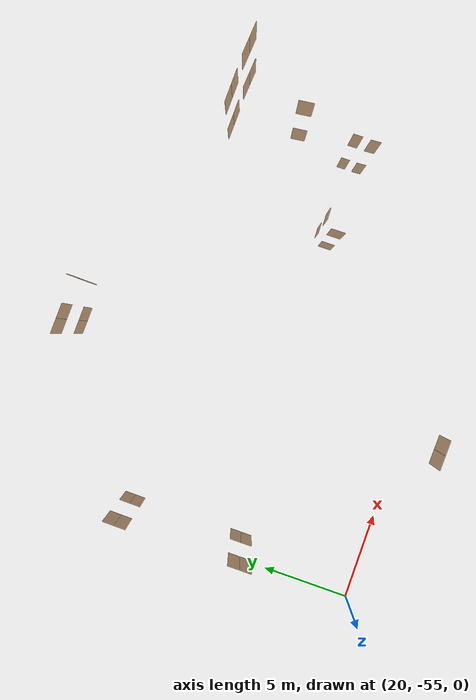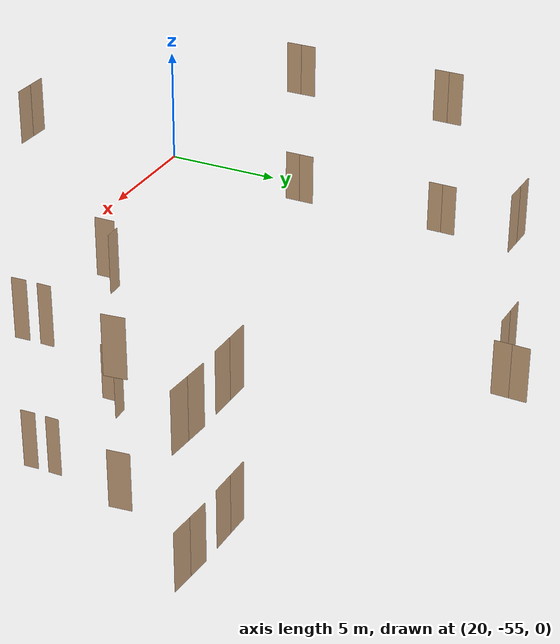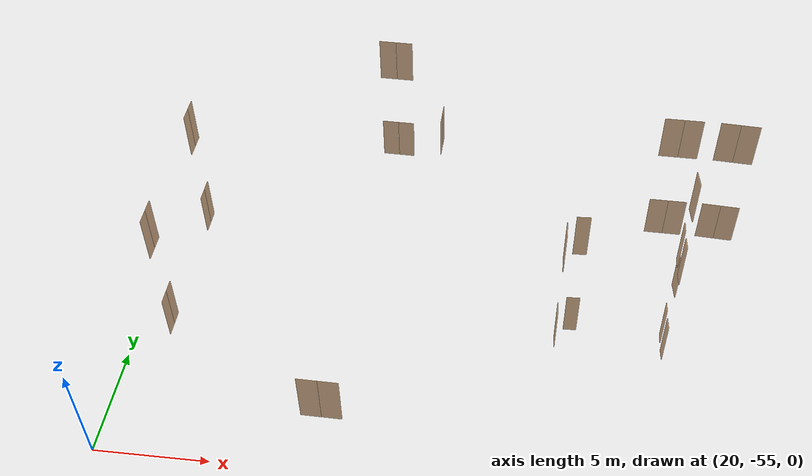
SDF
<sdf version="1.7">
 <world name="sim_world">
  <model name="null12">
   <pose>21.516139715442637 -47.992578104684455 0.0 0 0 1.5677624355625863</pose>
   <link name="right">
    <pose>0.31893911410792614 0 1.11 0 0 0</pose>
    <visual name="right_visual">
     <geometry><box><size>0.6278782282158523 0.03 2.2</size></box></geometry>
     <material>
      <ambient>0.5 0.25 0 0.6</ambient>
      <diffuse>0.5 0.25 0 0.6</diffuse>
      <pbr><metal><metalness>0.0</metalness></metal></pbr>
     </material>
    </visual>
    <collision name="right_collision">
     <geometry><box><size>0.6278782282158523 0.03 2.2</size></box></geometry>
     <surface><contact><collide_bitmask>0x02</collide_bitmask></contact></surface>
    </collision>
    <inertial>
     <mass>50.0</mass>
     <inertia><ixx>20.17041666666667</ixx><iyy>21.809296122781163</iyy><izz>1.6463794561144913</izz></inertia>
    </inertial>
   </link>
   <joint name="right_joint" type="revolute">
    <parent>world</parent>
    <child>right</child>
    <axis><xyz>0 0 -1</xyz><limit><lower>0</lower><upper>1.57</upper></limit></axis>
    <pose>0.31893911410792614 0 0 0 0 0</pose>
   </joint>
   <link name="left">
    <pose>-0.31893911410792614 0 1.11 0 0 0</pose>
    <visual name="left_visual">
     <geometry><box><size>0.6278782282158523 0.03 2.2</size></box></geometry>
     <material>
      <ambient>0.5 0.25 0 0.6</ambient>
      <diffuse>0.5 0.25 0 0.6</diffuse>
      <pbr><metal><metalness>0.0</metalness></metal></pbr>
     </material>
    </visual>
    <collision name="left_collision">
     <geometry><box><size>0.6278782282158523 0.03 2.2</size></box></geometry>
     <surface><contact><collide_bitmask>0x02</collide_bitmask></contact></surface>
    </collision>
    <inertial>
     <mass>50.0</mass>
     <inertia><ixx>20.17041666666667</ixx><iyy>21.809296122781163</iyy><izz>1.6463794561144913</izz></inertia>
    </inertial>
   </link>
   <joint name="left_joint" type="revolute">
    <parent>world</parent>
    <child>left</child>
    <axis><xyz>0 0 -1</xyz><limit><lower>-1.57</lower><upper>0</upper></limit></axis>
    <pose>-0.31893911410792614 0 0 0 0 0</pose>
   </joint>
   <plugin name="register_component" filename="libregister_component.so">
    <component name="Door">
     <v_max_door>0.5</v_max_door>
     <a_max_door>0.3</a_max_door>
     <a_nom_door>0.15</a_nom_door>
     <dx_min_door>0.01</dx_min_door>
     <f_max_door>500.0</f_max_door>
     <ros_interface>true</ros_interface>
     <door name="null12" type="DoubleSwingDoor" left_joint_name="left_joint" right_joint_name="right_joint"/>
    </component>
   </plugin>
  </model>
  <model name="null13">
   <pose>21.52582998996992 -41.437703387941625 0.0 0 0 1.5580600691412065</pose>
   <link name="right">
    <pose>0.3044549744162905 0 1.11 0 0 0</pose>
    <visual name="right_visual">
     <geometry><box><size>0.598909948832581 0.03 2.2</size></box></geometry>
     <material>
      <ambient>0.5 0.25 0 0.6</ambient>
      <diffuse>0.5 0.25 0 0.6</diffuse>
      <pbr><metal><metalness>0.0</metalness></metal></pbr>
     </material>
    </visual>
    <collision name="right_collision">
     <geometry><box><size>0.598909948832581 0.03 2.2</size></box></geometry>
     <surface><contact><collide_bitmask>0x02</collide_bitmask></contact></surface>
    </collision>
    <inertial>
     <mass>50.0</mass>
     <inertia><ixx>20.17041666666667</ixx><iyy>21.66122136171102</iyy><izz>1.4983046950443533</izz></inertia>
    </inertial>
   </link>
   <joint name="right_joint" type="revolute">
    <parent>world</parent>
    <child>right</child>
    <axis><xyz>0 0 -1</xyz><limit><lower>0</lower><upper>1.57</upper></limit></axis>
    <pose>0.3044549744162905 0 0 0 0 0</pose>
   </joint>
   <link name="left">
    <pose>-0.3044549744162905 0 1.11 0 0 0</pose>
    <visual name="left_visual">
     <geometry><box><size>0.598909948832581 0.03 2.2</size></box></geometry>
     <material>
      <ambient>0.5 0.25 0 0.6</ambient>
      <diffuse>0.5 0.25 0 0.6</diffuse>
      <pbr><metal><metalness>0.0</metalness></metal></pbr>
     </material>
    </visual>
    <collision name="left_collision">
     <geometry><box><size>0.598909948832581 0.03 2.2</size></box></geometry>
     <surface><contact><collide_bitmask>0x02</collide_bitmask></contact></surface>
    </collision>
    <inertial>
     <mass>50.0</mass>
     <inertia><ixx>20.17041666666667</ixx><iyy>21.66122136171102</iyy><izz>1.4983046950443533</izz></inertia>
    </inertial>
   </link>
   <joint name="left_joint" type="revolute">
    <parent>world</parent>
    <child>left</child>
    <axis><xyz>0 0 -1</xyz><limit><lower>-1.57</lower><upper>0</upper></limit></axis>
    <pose>-0.3044549744162905 0 0 0 0 0</pose>
   </joint>
   <plugin name="register_component" filename="libregister_component.so">
    <component name="Door">
     <v_max_door>0.5</v_max_door>
     <a_max_door>0.3</a_max_door>
     <a_nom_door>0.15</a_nom_door>
     <dx_min_door>0.01</dx_min_door>
     <f_max_door>500.0</f_max_door>
     <ros_interface>true</ros_interface>
     <door name="null13" type="DoubleSwingDoor" left_joint_name="left_joint" right_joint_name="right_joint"/>
    </component>
   </plugin>
  </model>
  <model name="null14">
   <pose>38.84317795980537 -47.05570665700809 0.0 0 0 -1.5538286634274892</pose>
   <link name="right">
    <pose>0 0 1.11 0 0 0</pose>
    <visual name="right_visual">
     <geometry><box><size>0.7454453095990315 0.03 2.2</size></box></geometry>
     <material>
      <ambient>0.5 0.25 0 0.6</ambient>
      <diffuse>0.5 0.25 0 0.6</diffuse>
      <pbr><metal><metalness>0.0</metalness></metal></pbr>
     </material>
    </visual>
    <collision name="right_collision">
     <geometry><box><size>0.7454453095990315 0.03 2.2</size></box></geometry>
     <surface><contact><collide_bitmask>0x02</collide_bitmask></contact></surface>
    </collision>
    <inertial>
     <mass>50.0</mass>
     <inertia><ixx>20.17041666666667</ixx><iyy>22.48203629001332</iyy><izz>2.31911962334665</izz></inertia>
    </inertial>
   </link>
   <joint name="right_joint" type="revolute">
    <parent>world</parent>
    <child>right</child>
    <axis><xyz>0 0 -1</xyz><limit><lower>0</lower><upper>1.57</upper></limit></axis>
    <pose>0.3777226547995158 0 0 0 0 0</pose>
   </joint>
   <plugin name="register_component" filename="libregister_component.so">
    <component name="Door">
     <v_max_door>0.5</v_max_door>
     <a_max_door>0.3</a_max_door>
     <a_nom_door>0.15</a_nom_door>
     <dx_min_door>0.01</dx_min_door>
     <f_max_door>500.0</f_max_door>
     <ros_interface>true</ros_interface>
     <door name="null14" type="SwingDoor" left_joint_name="empty_joint" right_joint_name="right_joint"/>
    </component>
   </plugin>
  </model>
  <model name="null15">
   <pose>39.50890402689552 -46.33237183773546 0.0 0 0 0.042532484541431645</pose>
   <link name="right">
    <pose>0 0 1.11 0 0 0</pose>
    <visual name="right_visual">
     <geometry><box><size>0.5922391749348342 0.03 2.2</size></box></geometry>
     <material>
      <ambient>0.5 0.25 0 0.6</ambient>
      <diffuse>0.5 0.25 0 0.6</diffuse>
      <pbr><metal><metalness>0.0</metalness></metal></pbr>
     </material>
    </visual>
    <collision name="right_collision">
     <geometry><box><size>0.5922391749348342 0.03 2.2</size></box></geometry>
     <surface><contact><collide_bitmask>0x02</collide_bitmask></contact></surface>
    </collision>
    <inertial>
     <mass>50.0</mass>
     <inertia><ixx>20.17041666666667</ixx><iyy>21.62811350136456</iyy><izz>1.4651968346978885</izz></inertia>
    </inertial>
   </link>
   <joint name="right_joint" type="revolute">
    <parent>world</parent>
    <child>right</child>
    <axis><xyz>0 0 -1</xyz><limit><lower>0</lower><upper>1.57</upper></limit></axis>
    <pose>0.3011195874674171 0 0 0 0 0</pose>
   </joint>
   <plugin name="register_component" filename="libregister_component.so">
    <component name="Door">
     <v_max_door>0.5</v_max_door>
     <a_max_door>0.3</a_max_door>
     <a_nom_door>0.15</a_nom_door>
     <dx_min_door>0.01</dx_min_door>
     <f_max_door>500.0</f_max_door>
     <ros_interface>true</ros_interface>
     <door name="null15" type="SwingDoor" left_joint_name="empty_joint" right_joint_name="right_joint"/>
    </component>
   </plugin>
  </model>
  <model name="null16">
   <pose>43.616374400980746 -47.33711727775923 0.0 0 0 1.6382697231197274</pose>
   <link name="right">
    <pose>0 0 1.11 0 0 0</pose>
    <visual name="right_visual">
     <geometry><box><size>0.5320376529630928 0.03 2.2</size></box></geometry>
     <material>
      <ambient>0.5 0.25 0 0.6</ambient>
      <diffuse>0.5 0.25 0 0.6</diffuse>
      <pbr><metal><metalness>0.0</metalness></metal></pbr>
     </material>
    </visual>
    <collision name="right_collision">
     <geometry><box><size>0.5320376529630928 0.03 2.2</size></box></geometry>
     <surface><contact><collide_bitmask>0x02</collide_bitmask></contact></surface>
    </collision>
    <inertial>
     <mass>50.0</mass>
     <inertia><ixx>20.17041666666667</ixx><iyy>21.34610026737699</iyy><izz>1.1831836007103183</izz></inertia>
    </inertial>
   </link>
   <joint name="right_joint" type="revolute">
    <parent>world</parent>
    <child>right</child>
    <axis><xyz>0 0 -1</xyz><limit><lower>0</lower><upper>1.57</upper></limit></axis>
    <pose>0.2710188264815464 0 0 0 0 0</pose>
   </joint>
   <plugin name="register_component" filename="libregister_component.so">
    <component name="Door">
     <v_max_door>0.5</v_max_door>
     <a_max_door>0.3</a_max_door>
     <a_nom_door>0.15</a_nom_door>
     <dx_min_door>0.01</dx_min_door>
     <f_max_door>500.0</f_max_door>
     <ros_interface>true</ros_interface>
     <door name="null16" type="SwingDoor" left_joint_name="empty_joint" right_joint_name="right_joint"/>
    </component>
   </plugin>
  </model>
  <model name="null17">
   <pose>43.59444156543708 -46.41264265017277 0.0 0 0 1.5853122435762714</pose>
   <link name="right">
    <pose>0 0 1.11 0 0 0</pose>
    <visual name="right_visual">
     <geometry><box><size>0.494312019098214 0.03 2.2</size></box></geometry>
     <material>
      <ambient>0.5 0.25 0 0.6</ambient>
      <diffuse>0.5 0.25 0 0.6</diffuse>
      <pbr><metal><metalness>0.0</metalness></metal></pbr>
     </material>
    </visual>
    <collision name="right_collision">
     <geometry><box><size>0.494312019098214 0.03 2.2</size></box></geometry>
     <surface><contact><collide_bitmask>0x02</collide_bitmask></contact></surface>
    </collision>
    <inertial>
     <mass>50.0</mass>
     <inertia><ixx>20.17041666666667</ixx><iyy>21.184768217603974</iyy><izz>1.0218515509373045</izz></inertia>
    </inertial>
   </link>
   <joint name="right_joint" type="revolute">
    <parent>world</parent>
    <child>right</child>
    <axis><xyz>0 0 -1</xyz><limit><lower>0</lower><upper>1.57</upper></limit></axis>
    <pose>0.252156009549107 0 0 0 0 0</pose>
   </joint>
   <plugin name="register_component" filename="libregister_component.so">
    <component name="Door">
     <v_max_door>0.5</v_max_door>
     <a_max_door>0.3</a_max_door>
     <a_nom_door>0.15</a_nom_door>
     <dx_min_door>0.01</dx_min_door>
     <f_max_door>500.0</f_max_door>
     <ros_interface>true</ros_interface>
     <door name="null17" type="SwingDoor" left_joint_name="empty_joint" right_joint_name="right_joint"/>
    </component>
   </plugin>
  </model>
  <model name="null18">
   <pose>44.30699227311567 -43.471132471488566 0.0 0 0 1.695151321341658</pose>
   <link name="right">
    <pose>0 0 1.11 0 0 0</pose>
    <visual name="right_visual">
     <geometry><box><size>0.8148966447741 0.03 2.2</size></box></geometry>
     <material>
      <ambient>0.5 0.25 0 0.6</ambient>
      <diffuse>0.5 0.25 0 0.6</diffuse>
      <pbr><metal><metalness>0.0</metalness></metal></pbr>
     </material>
    </visual>
    <collision name="right_collision">
     <geometry><box><size>0.8148966447741 0.03 2.2</size></box></geometry>
     <surface><contact><collide_bitmask>0x02</collide_bitmask></contact></surface>
    </collision>
    <inertial>
     <mass>50.0</mass>
     <inertia><ixx>20.17041666666667</ixx><iyy>22.93356892360036</iyy><izz>2.7706522569336904</izz></inertia>
    </inertial>
   </link>
   <joint name="right_joint" type="revolute">
    <parent>world</parent>
    <child>right</child>
    <axis><xyz>0 0 -1</xyz><limit><lower>0</lower><upper>1.57</upper></limit></axis>
    <pose>0.41244832238705 0 0 0 0 0</pose>
   </joint>
   <plugin name="register_component" filename="libregister_component.so">
    <component name="Door">
     <v_max_door>0.5</v_max_door>
     <a_max_door>0.3</a_max_door>
     <a_nom_door>0.15</a_nom_door>
     <dx_min_door>0.01</dx_min_door>
     <f_max_door>500.0</f_max_door>
     <ros_interface>true</ros_interface>
     <door name="null18" type="SwingDoor" left_joint_name="empty_joint" right_joint_name="right_joint"/>
    </component>
   </plugin>
  </model>
  <model name="null27">
   <pose>43.86870017459789 -39.68192661317288 0.0 0 0 -0.018853941428626845</pose>
   <link name="right">
    <pose>0.4392396249357061 0 1.11 0 0 0</pose>
    <visual name="right_visual">
     <geometry><box><size>0.8684792498714122 0.03 2.2</size></box></geometry>
     <material>
      <ambient>0.5 0.25 0 0.6</ambient>
      <diffuse>0.5 0.25 0 0.6</diffuse>
      <pbr><metal><metalness>0.0</metalness></metal></pbr>
     </material>
    </visual>
    <collision name="right_collision">
     <geometry><box><size>0.8684792498714122 0.03 2.2</size></box></geometry>
     <surface><contact><collide_bitmask>0x02</collide_bitmask></contact></surface>
    </collision>
    <inertial>
     <mass>50.0</mass>
     <inertia><ixx>20.17041666666667</ixx><iyy>23.309400864405053</iyy><izz>3.146484197738379</izz></inertia>
    </inertial>
   </link>
   <joint name="right_joint" type="revolute">
    <parent>world</parent>
    <child>right</child>
    <axis><xyz>0 0 -1</xyz><limit><lower>0</lower><upper>1.57</upper></limit></axis>
    <pose>0.4392396249357061 0 0 0 0 0</pose>
   </joint>
   <link name="left">
    <pose>-0.4392396249357061 0 1.11 0 0 0</pose>
    <visual name="left_visual">
     <geometry><box><size>0.8684792498714122 0.03 2.2</size></box></geometry>
     <material>
      <ambient>0.5 0.25 0 0.6</ambient>
      <diffuse>0.5 0.25 0 0.6</diffuse>
      <pbr><metal><metalness>0.0</metalness></metal></pbr>
     </material>
    </visual>
    <collision name="left_collision">
     <geometry><box><size>0.8684792498714122 0.03 2.2</size></box></geometry>
     <surface><contact><collide_bitmask>0x02</collide_bitmask></contact></surface>
    </collision>
    <inertial>
     <mass>50.0</mass>
     <inertia><ixx>20.17041666666667</ixx><iyy>23.309400864405053</iyy><izz>3.146484197738379</izz></inertia>
    </inertial>
   </link>
   <joint name="left_joint" type="revolute">
    <parent>world</parent>
    <child>left</child>
    <axis><xyz>0 0 -1</xyz><limit><lower>-1.57</lower><upper>0</upper></limit></axis>
    <pose>-0.4392396249357061 0 0 0 0 0</pose>
   </joint>
   <plugin name="register_component" filename="libregister_component.so">
    <component name="Door">
     <v_max_door>0.5</v_max_door>
     <a_max_door>0.3</a_max_door>
     <a_nom_door>0.15</a_nom_door>
     <dx_min_door>0.01</dx_min_door>
     <f_max_door>500.0</f_max_door>
     <ros_interface>true</ros_interface>
     <door name="null27" type="DoubleSwingDoor" left_joint_name="left_joint" right_joint_name="right_joint"/>
    </component>
   </plugin>
  </model>
  <model name="null28">
   <pose>46.3545150265612 -39.75981342174675 0.0 0 0 -0.06970741349653899</pose>
   <link name="right">
    <pose>0.4402306933766998 0 1.11 0 0 0</pose>
    <visual name="right_visual">
     <geometry><box><size>0.8704613867533996 0.03 2.2</size></box></geometry>
     <material>
      <ambient>0.5 0.25 0 0.6</ambient>
      <diffuse>0.5 0.25 0 0.6</diffuse>
      <pbr><metal><metalness>0.0</metalness></metal></pbr>
     </material>
    </visual>
    <collision name="right_collision">
     <geometry><box><size>0.8704613867533996 0.03 2.2</size></box></geometry>
     <surface><contact><collide_bitmask>0x02</collide_bitmask></contact></surface>
    </collision>
    <inertial>
     <mass>50.0</mass>
     <inertia><ixx>20.17041666666667</ixx><iyy>23.323762607619386</iyy><izz>3.1608459409527145</izz></inertia>
    </inertial>
   </link>
   <joint name="right_joint" type="revolute">
    <parent>world</parent>
    <child>right</child>
    <axis><xyz>0 0 -1</xyz><limit><lower>0</lower><upper>1.57</upper></limit></axis>
    <pose>0.4402306933766998 0 0 0 0 0</pose>
   </joint>
   <link name="left">
    <pose>-0.4402306933766998 0 1.11 0 0 0</pose>
    <visual name="left_visual">
     <geometry><box><size>0.8704613867533996 0.03 2.2</size></box></geometry>
     <material>
      <ambient>0.5 0.25 0 0.6</ambient>
      <diffuse>0.5 0.25 0 0.6</diffuse>
      <pbr><metal><metalness>0.0</metalness></metal></pbr>
     </material>
    </visual>
    <collision name="left_collision">
     <geometry><box><size>0.8704613867533996 0.03 2.2</size></box></geometry>
     <surface><contact><collide_bitmask>0x02</collide_bitmask></contact></surface>
    </collision>
    <inertial>
     <mass>50.0</mass>
     <inertia><ixx>20.17041666666667</ixx><iyy>23.323762607619386</iyy><izz>3.1608459409527145</izz></inertia>
    </inertial>
   </link>
   <joint name="left_joint" type="revolute">
    <parent>world</parent>
    <child>left</child>
    <axis><xyz>0 0 -1</xyz><limit><lower>-1.57</lower><upper>0</upper></limit></axis>
    <pose>-0.4402306933766998 0 0 0 0 0</pose>
   </joint>
   <plugin name="register_component" filename="libregister_component.so">
    <component name="Door">
     <v_max_door>0.5</v_max_door>
     <a_max_door>0.3</a_max_door>
     <a_nom_door>0.15</a_nom_door>
     <dx_min_door>0.01</dx_min_door>
     <f_max_door>500.0</f_max_door>
     <ros_interface>true</ros_interface>
     <door name="null28" type="DoubleSwingDoor" left_joint_name="left_joint" right_joint_name="right_joint"/>
    </component>
   </plugin>
  </model>
  <model name="null32">
   <pose>32.38725342694753 -34.51945038820166 0.0 0 0 1.5533459476673854</pose>
   <link name="right">
    <pose>0.3407540803626434 0 1.11 0 0 0</pose>
    <visual name="right_visual">
     <geometry><box><size>0.6715081607252867 0.03 2.2</size></box></geometry>
     <material>
      <ambient>0.5 0.25 0 0.6</ambient>
      <diffuse>0.5 0.25 0 0.6</diffuse>
      <pbr><metal><metalness>0.0</metalness></metal></pbr>
     </material>
    </visual>
    <collision name="right_collision">
     <geometry><box><size>0.6715081607252867 0.03 2.2</size></box></geometry>
     <surface><contact><collide_bitmask>0x02</collide_bitmask></contact></surface>
    </collision>
    <inertial>
     <mass>50.0</mass>
     <inertia><ixx>20.17041666666667</ixx><iyy>22.04551337466941</iyy><izz>1.88259670800274</izz></inertia>
    </inertial>
   </link>
   <joint name="right_joint" type="revolute">
    <parent>world</parent>
    <child>right</child>
    <axis><xyz>0 0 -1</xyz><limit><lower>0</lower><upper>1.57</upper></limit></axis>
    <pose>0.3407540803626434 0 0 0 0 0</pose>
   </joint>
   <link name="left">
    <pose>-0.3407540803626434 0 1.11 0 0 0</pose>
    <visual name="left_visual">
     <geometry><box><size>0.6715081607252867 0.03 2.2</size></box></geometry>
     <material>
      <ambient>0.5 0.25 0 0.6</ambient>
      <diffuse>0.5 0.25 0 0.6</diffuse>
      <pbr><metal><metalness>0.0</metalness></metal></pbr>
     </material>
    </visual>
    <collision name="left_collision">
     <geometry><box><size>0.6715081607252867 0.03 2.2</size></box></geometry>
     <surface><contact><collide_bitmask>0x02</collide_bitmask></contact></surface>
    </collision>
    <inertial>
     <mass>50.0</mass>
     <inertia><ixx>20.17041666666667</ixx><iyy>22.04551337466941</iyy><izz>1.88259670800274</izz></inertia>
    </inertial>
   </link>
   <joint name="left_joint" type="revolute">
    <parent>world</parent>
    <child>left</child>
    <axis><xyz>0 0 -1</xyz><limit><lower>-1.57</lower><upper>0</upper></limit></axis>
    <pose>-0.3407540803626434 0 0 0 0 0</pose>
   </joint>
   <plugin name="register_component" filename="libregister_component.so">
    <component name="Door">
     <v_max_door>0.5</v_max_door>
     <a_max_door>0.3</a_max_door>
     <a_nom_door>0.15</a_nom_door>
     <dx_min_door>0.01</dx_min_door>
     <f_max_door>500.0</f_max_door>
     <ros_interface>true</ros_interface>
     <door name="null32" type="DoubleSwingDoor" left_joint_name="left_joint" right_joint_name="right_joint"/>
    </component>
   </plugin>
  </model>
  <model name="null41x">
   <pose>30.193493071808035 -35.38526449719531 0.0 0 0 3.1171103130600852</pose>
   <link name="right">
    <pose>0.4021477073207804 0 1.11 0 0 0</pose>
    <visual name="right_visual">
     <geometry><box><size>0.7942954146415608 0.03 2.2</size></box></geometry>
     <material>
      <ambient>0.5 0.25 0 0.6</ambient>
      <diffuse>0.5 0.25 0 0.6</diffuse>
      <pbr><metal><metalness>0.0</metalness></metal></pbr>
     </material>
    </visual>
    <collision name="right_collision">
     <geometry><box><size>0.7942954146415608 0.03 2.2</size></box></geometry>
     <surface><contact><collide_bitmask>0x02</collide_bitmask></contact></surface>
    </collision>
    <inertial>
     <mass>50.0</mass>
     <inertia><ixx>20.17041666666667</ixx><iyy>22.795438357169207</iyy><izz>2.632521690502538</izz></inertia>
    </inertial>
   </link>
   <joint name="right_joint" type="revolute">
    <parent>world</parent>
    <child>right</child>
    <axis><xyz>0 0 -1</xyz><limit><lower>0</lower><upper>1.57</upper></limit></axis>
    <pose>0.4021477073207804 0 0 0 0 0</pose>
   </joint>
   <link name="left">
    <pose>-0.4021477073207804 0 1.11 0 0 0</pose>
    <visual name="left_visual">
     <geometry><box><size>0.7942954146415608 0.03 2.2</size></box></geometry>
     <material>
      <ambient>0.5 0.25 0 0.6</ambient>
      <diffuse>0.5 0.25 0 0.6</diffuse>
      <pbr><metal><metalness>0.0</metalness></metal></pbr>
     </material>
    </visual>
    <collision name="left_collision">
     <geometry><box><size>0.7942954146415608 0.03 2.2</size></box></geometry>
     <surface><contact><collide_bitmask>0x02</collide_bitmask></contact></surface>
    </collision>
    <inertial>
     <mass>50.0</mass>
     <inertia><ixx>20.17041666666667</ixx><iyy>22.795438357169207</iyy><izz>2.632521690502538</izz></inertia>
    </inertial>
   </link>
   <joint name="left_joint" type="revolute">
    <parent>world</parent>
    <child>left</child>
    <axis><xyz>0 0 -1</xyz><limit><lower>-1.57</lower><upper>0</upper></limit></axis>
    <pose>-0.4021477073207804 0 0 0 0 0</pose>
   </joint>
   <plugin name="register_component" filename="libregister_component.so">
    <component name="Door">
     <v_max_door>0.5</v_max_door>
     <a_max_door>0.3</a_max_door>
     <a_nom_door>0.15</a_nom_door>
     <dx_min_door>0.01</dx_min_door>
     <f_max_door>500.0</f_max_door>
     <ros_interface>true</ros_interface>
     <door name="null41x" type="DoubleSwingDoor" left_joint_name="left_joint" right_joint_name="right_joint"/>
    </component>
   </plugin>
  </model>
  <model name="anull12">
   <pose>21.518147028781954 -47.965576174601644 5.0 0 0 1.5677632973814248</pose>
   <link name="right">
    <pose>0.3189404884485488 0 1.11 0 0 0</pose>
    <visual name="right_visual">
     <geometry><box><size>0.6278809768970975 0.03 2.2</size></box></geometry>
     <material>
      <ambient>0.5 0.25 0 0.6</ambient>
      <diffuse>0.5 0.25 0 0.6</diffuse>
      <pbr><metal><metalness>0.0</metalness></metal></pbr>
     </material>
    </visual>
    <collision name="right_collision">
     <geometry><box><size>0.6278809768970975 0.03 2.2</size></box></geometry>
     <surface><contact><collide_bitmask>0x02</collide_bitmask></contact></surface>
    </collision>
    <inertial>
     <mass>50.0</mass>
     <inertia><ixx>20.17041666666667</ixx><iyy>21.80931050478856</iyy><izz>1.6463938381218899</izz></inertia>
    </inertial>
   </link>
   <joint name="right_joint" type="revolute">
    <parent>world</parent>
    <child>right</child>
    <axis><xyz>0 0 -1</xyz><limit><lower>0</lower><upper>1.57</upper></limit></axis>
    <pose>0.3189404884485488 0 0 0 0 0</pose>
   </joint>
   <link name="left">
    <pose>-0.3189404884485488 0 1.11 0 0 0</pose>
    <visual name="left_visual">
     <geometry><box><size>0.6278809768970975 0.03 2.2</size></box></geometry>
     <material>
      <ambient>0.5 0.25 0 0.6</ambient>
      <diffuse>0.5 0.25 0 0.6</diffuse>
      <pbr><metal><metalness>0.0</metalness></metal></pbr>
     </material>
    </visual>
    <collision name="left_collision">
     <geometry><box><size>0.6278809768970975 0.03 2.2</size></box></geometry>
     <surface><contact><collide_bitmask>0x02</collide_bitmask></contact></surface>
    </collision>
    <inertial>
     <mass>50.0</mass>
     <inertia><ixx>20.17041666666667</ixx><iyy>21.80931050478856</iyy><izz>1.6463938381218899</izz></inertia>
    </inertial>
   </link>
   <joint name="left_joint" type="revolute">
    <parent>world</parent>
    <child>left</child>
    <axis><xyz>0 0 -1</xyz><limit><lower>-1.57</lower><upper>0</upper></limit></axis>
    <pose>-0.3189404884485488 0 0 0 0 0</pose>
   </joint>
   <plugin name="register_component" filename="libregister_component.so">
    <component name="Door">
     <v_max_door>0.5</v_max_door>
     <a_max_door>0.3</a_max_door>
     <a_nom_door>0.15</a_nom_door>
     <dx_min_door>0.01</dx_min_door>
     <f_max_door>500.0</f_max_door>
     <ros_interface>true</ros_interface>
     <door name="anull12" type="DoubleSwingDoor" left_joint_name="left_joint" right_joint_name="right_joint"/>
    </component>
   </plugin>
  </model>
  <model name="anull13">
   <pose>21.527831695926736 -41.41067320389757 5.0 0 0 1.558060930960046</pose>
   <link name="right">
    <pose>0.3044562863433009 0 1.11 0 0 0</pose>
    <visual name="right_visual">
     <geometry><box><size>0.5989125726866018 0.03 2.2</size></box></geometry>
     <material>
      <ambient>0.5 0.25 0 0.6</ambient>
      <diffuse>0.5 0.25 0 0.6</diffuse>
      <pbr><metal><metalness>0.0</metalness></metal></pbr>
     </material>
    </visual>
    <collision name="right_collision">
     <geometry><box><size>0.5989125726866018 0.03 2.2</size></box></geometry>
     <surface><contact><collide_bitmask>0x02</collide_bitmask></contact></surface>
    </collision>
    <inertial>
     <mass>50.0</mass>
     <inertia><ixx>20.17041666666667</ixx><iyy>21.661234457175354</iyy><izz>1.4983177905086837</izz></inertia>
    </inertial>
   </link>
   <joint name="right_joint" type="revolute">
    <parent>world</parent>
    <child>right</child>
    <axis><xyz>0 0 -1</xyz><limit><lower>0</lower><upper>1.57</upper></limit></axis>
    <pose>0.3044562863433009 0 0 0 0 0</pose>
   </joint>
   <link name="left">
    <pose>-0.3044562863433009 0 1.11 0 0 0</pose>
    <visual name="left_visual">
     <geometry><box><size>0.5989125726866018 0.03 2.2</size></box></geometry>
     <material>
      <ambient>0.5 0.25 0 0.6</ambient>
      <diffuse>0.5 0.25 0 0.6</diffuse>
      <pbr><metal><metalness>0.0</metalness></metal></pbr>
     </material>
    </visual>
    <collision name="left_collision">
     <geometry><box><size>0.5989125726866018 0.03 2.2</size></box></geometry>
     <surface><contact><collide_bitmask>0x02</collide_bitmask></contact></surface>
    </collision>
    <inertial>
     <mass>50.0</mass>
     <inertia><ixx>20.17041666666667</ixx><iyy>21.661234457175354</iyy><izz>1.4983177905086837</izz></inertia>
    </inertial>
   </link>
   <joint name="left_joint" type="revolute">
    <parent>world</parent>
    <child>left</child>
    <axis><xyz>0 0 -1</xyz><limit><lower>-1.57</lower><upper>0</upper></limit></axis>
    <pose>-0.3044562863433009 0 0 0 0 0</pose>
   </joint>
   <plugin name="register_component" filename="libregister_component.so">
    <component name="Door">
     <v_max_door>0.5</v_max_door>
     <a_max_door>0.3</a_max_door>
     <a_nom_door>0.15</a_nom_door>
     <dx_min_door>0.01</dx_min_door>
     <f_max_door>500.0</f_max_door>
     <ros_interface>true</ros_interface>
     <door name="anull13" type="DoubleSwingDoor" left_joint_name="left_joint" right_joint_name="right_joint"/>
    </component>
   </plugin>
  </model>
  <model name="anull14">
   <pose>38.845259129666395 -47.028685757020284 5.0 0 0 -1.5538278016086442</pose>
   <link name="right">
    <pose>0 0 1.11 0 0 0</pose>
    <visual name="right_visual">
     <geometry><box><size>0.7454485648886091 0.03 2.2</size></box></geometry>
     <material>
      <ambient>0.5 0.25 0 0.6</ambient>
      <diffuse>0.5 0.25 0 0.6</diffuse>
      <pbr><metal><metalness>0.0</metalness></metal></pbr>
     </material>
    </visual>
    <collision name="right_collision">
     <geometry><box><size>0.7454485648886091 0.03 2.2</size></box></geometry>
     <surface><contact><collide_bitmask>0x02</collide_bitmask></contact></surface>
    </collision>
    <inertial>
     <mass>50.0</mass>
     <inertia><ixx>20.17041666666667</ixx><iyy>22.482056512060367</iyy><izz>2.3191398453936958</izz></inertia>
    </inertial>
   </link>
   <joint name="right_joint" type="revolute">
    <parent>world</parent>
    <child>right</child>
    <axis><xyz>0 0 -1</xyz><limit><lower>0</lower><upper>1.57</upper></limit></axis>
    <pose>0.37772428244430456 0 0 0 0 0</pose>
   </joint>
   <plugin name="register_component" filename="libregister_component.so">
    <component name="Door">
     <v_max_door>0.5</v_max_door>
     <a_max_door>0.3</a_max_door>
     <a_nom_door>0.15</a_nom_door>
     <dx_min_door>0.01</dx_min_door>
     <f_max_door>500.0</f_max_door>
     <ros_interface>true</ros_interface>
     <door name="anull14" type="SwingDoor" left_joint_name="empty_joint" right_joint_name="right_joint"/>
    </component>
   </plugin>
  </model>
  <model name="anull15">
   <pose>39.51098744205042 -46.30534724708791 5.0 0 0 0.042533346360271035</pose>
   <link name="right">
    <pose>0 0 1.11 0 0 0</pose>
    <visual name="right_visual">
     <geometry><box><size>0.5922417700438324 0.03 2.2</size></box></geometry>
     <material>
      <ambient>0.5 0.25 0 0.6</ambient>
      <diffuse>0.5 0.25 0 0.6</diffuse>
      <pbr><metal><metalness>0.0</metalness></metal></pbr>
     </material>
    </visual>
    <collision name="right_collision">
     <geometry><box><size>0.5922417700438324 0.03 2.2</size></box></geometry>
     <surface><contact><collide_bitmask>0x02</collide_bitmask></contact></surface>
    </collision>
    <inertial>
     <mass>50.0</mass>
     <inertia><ixx>20.17041666666667</ixx><iyy>21.62812630910272</iyy><izz>1.4652096424360486</izz></inertia>
    </inertial>
   </link>
   <joint name="right_joint" type="revolute">
    <parent>world</parent>
    <child>right</child>
    <axis><xyz>0 0 -1</xyz><limit><lower>0</lower><upper>1.57</upper></limit></axis>
    <pose>0.3011208850219162 0 0 0 0 0</pose>
   </joint>
   <plugin name="register_component" filename="libregister_component.so">
    <component name="Door">
     <v_max_door>0.5</v_max_door>
     <a_max_door>0.3</a_max_door>
     <a_nom_door>0.15</a_nom_door>
     <dx_min_door>0.01</dx_min_door>
     <f_max_door>500.0</f_max_door>
     <ros_interface>true</ros_interface>
     <door name="anull15" type="SwingDoor" left_joint_name="empty_joint" right_joint_name="right_joint"/>
    </component>
   </plugin>
  </model>
  <model name="anull16">
   <pose>43.618476381548085 -47.31009347674954 5.0 0 0 1.6382705849385608</pose>
   <link name="right">
    <pose>0 0 1.11 0 0 0</pose>
    <visual name="right_visual">
     <geometry><box><size>0.5320399886576948 0.03 2.2</size></box></geometry>
     <material>
      <ambient>0.5 0.25 0 0.6</ambient>
      <diffuse>0.5 0.25 0 0.6</diffuse>
      <pbr><metal><metalness>0.0</metalness></metal></pbr>
     </material>
    </visual>
    <collision name="right_collision">
     <geometry><box><size>0.5320399886576948 0.03 2.2</size></box></geometry>
     <surface><contact><collide_bitmask>0x02</collide_bitmask></contact></surface>
    </collision>
    <inertial>
     <mass>50.0</mass>
     <inertia><ixx>20.17041666666667</ixx><iyy>21.346110623045337</iyy><izz>1.1831939563786666</izz></inertia>
    </inertial>
   </link>
   <joint name="right_joint" type="revolute">
    <parent>world</parent>
    <child>right</child>
    <axis><xyz>0 0 -1</xyz><limit><lower>0</lower><upper>1.57</upper></limit></axis>
    <pose>0.2710199943288474 0 0 0 0 0</pose>
   </joint>
   <plugin name="register_component" filename="libregister_component.so">
    <component name="Door">
     <v_max_door>0.5</v_max_door>
     <a_max_door>0.3</a_max_door>
     <a_nom_door>0.15</a_nom_door>
     <dx_min_door>0.01</dx_min_door>
     <f_max_door>500.0</f_max_door>
     <ros_interface>true</ros_interface>
     <door name="anull16" type="SwingDoor" left_joint_name="empty_joint" right_joint_name="right_joint"/>
    </component>
   </plugin>
  </model>
  <model name="anull17">
   <pose>43.596542654760555 -46.38561488441178 5.0 0 0 1.5853131053951008</pose>
   <link name="right">
    <pose>0 0 1.11 0 0 0</pose>
    <visual name="right_visual">
     <geometry><box><size>0.494314192229257 0.03 2.2</size></box></geometry>
     <material>
      <ambient>0.5 0.25 0 0.6</ambient>
      <diffuse>0.5 0.25 0 0.6</diffuse>
      <pbr><metal><metalness>0.0</metalness></metal></pbr>
     </material>
    </visual>
    <collision name="right_collision">
     <geometry><box><size>0.494314192229257 0.03 2.2</size></box></geometry>
     <surface><contact><collide_bitmask>0x02</collide_bitmask></contact></surface>
    </collision>
    <inertial>
     <mass>50.0</mass>
     <inertia><ixx>20.17041666666667</ixx><iyy>21.184777169330264</iyy><izz>1.0218605026635952</izz></inertia>
    </inertial>
   </link>
   <joint name="right_joint" type="revolute">
    <parent>world</parent>
    <child>right</child>
    <axis><xyz>0 0 -1</xyz><limit><lower>0</lower><upper>1.57</upper></limit></axis>
    <pose>0.2521570961146285 0 0 0 0 0</pose>
   </joint>
   <plugin name="register_component" filename="libregister_component.so">
    <component name="Door">
     <v_max_door>0.5</v_max_door>
     <a_max_door>0.3</a_max_door>
     <a_nom_door>0.15</a_nom_door>
     <dx_min_door>0.01</dx_min_door>
     <f_max_door>500.0</f_max_door>
     <ros_interface>true</ros_interface>
     <door name="anull17" type="SwingDoor" left_joint_name="empty_joint" right_joint_name="right_joint"/>
    </component>
   </plugin>
  </model>
  <model name="anull18">
   <pose>44.3090938978315 -43.44409141637411 5.0 0 0 1.6951521831604972</pose>
   <link name="right">
    <pose>0 0 1.11 0 0 0</pose>
    <visual name="right_visual">
     <geometry><box><size>0.8149001993364346 0.03 2.2</size></box></geometry>
     <material>
      <ambient>0.5 0.25 0 0.6</ambient>
      <diffuse>0.5 0.25 0 0.6</diffuse>
      <pbr><metal><metalness>0.0</metalness></metal></pbr>
     </material>
    </visual>
    <collision name="right_collision">
     <geometry><box><size>0.8149001993364346 0.03 2.2</size></box></geometry>
     <surface><contact><collide_bitmask>0x02</collide_bitmask></contact></surface>
    </collision>
    <inertial>
     <mass>50.0</mass>
     <inertia><ixx>20.17041666666667</ixx><iyy>22.933593061994006</iyy><izz>2.7706763953273374</izz></inertia>
    </inertial>
   </link>
   <joint name="right_joint" type="revolute">
    <parent>world</parent>
    <child>right</child>
    <axis><xyz>0 0 -1</xyz><limit><lower>0</lower><upper>1.57</upper></limit></axis>
    <pose>0.41245009966821733 0 0 0 0 0</pose>
   </joint>
   <plugin name="register_component" filename="libregister_component.so">
    <component name="Door">
     <v_max_door>0.5</v_max_door>
     <a_max_door>0.3</a_max_door>
     <a_nom_door>0.15</a_nom_door>
     <dx_min_door>0.01</dx_min_door>
     <f_max_door>500.0</f_max_door>
     <ros_interface>true</ros_interface>
     <door name="anull18" type="SwingDoor" left_joint_name="empty_joint" right_joint_name="right_joint"/>
    </component>
   </plugin>
  </model>
  <model name="anull27">
   <pose>43.87079664504623 -39.65486960772188 5.0 0 0 -0.01885307960978803</pose>
   <link name="right">
    <pose>0.43924151766328917 0 1.11 0 0 0</pose>
    <visual name="right_visual">
     <geometry><box><size>0.8684830353265783 0.03 2.2</size></box></geometry>
     <material>
      <ambient>0.5 0.25 0 0.6</ambient>
      <diffuse>0.5 0.25 0 0.6</diffuse>
      <pbr><metal><metalness>0.0</metalness></metal></pbr>
     </material>
    </visual>
    <collision name="right_collision">
     <geometry><box><size>0.8684830353265783 0.03 2.2</size></box></geometry>
     <surface><contact><collide_bitmask>0x02</collide_bitmask></contact></surface>
    </collision>
    <inertial>
     <mass>50.0</mass>
     <inertia><ixx>20.17041666666667</ixx><iyy>23.30942826104195</iyy><izz>3.146511594375278</izz></inertia>
    </inertial>
   </link>
   <joint name="right_joint" type="revolute">
    <parent>world</parent>
    <child>right</child>
    <axis><xyz>0 0 -1</xyz><limit><lower>0</lower><upper>1.57</upper></limit></axis>
    <pose>0.43924151766328917 0 0 0 0 0</pose>
   </joint>
   <link name="left">
    <pose>-0.43924151766328917 0 1.11 0 0 0</pose>
    <visual name="left_visual">
     <geometry><box><size>0.8684830353265783 0.03 2.2</size></box></geometry>
     <material>
      <ambient>0.5 0.25 0 0.6</ambient>
      <diffuse>0.5 0.25 0 0.6</diffuse>
      <pbr><metal><metalness>0.0</metalness></metal></pbr>
     </material>
    </visual>
    <collision name="left_collision">
     <geometry><box><size>0.8684830353265783 0.03 2.2</size></box></geometry>
     <surface><contact><collide_bitmask>0x02</collide_bitmask></contact></surface>
    </collision>
    <inertial>
     <mass>50.0</mass>
     <inertia><ixx>20.17041666666667</ixx><iyy>23.30942826104195</iyy><izz>3.146511594375278</izz></inertia>
    </inertial>
   </link>
   <joint name="left_joint" type="revolute">
    <parent>world</parent>
    <child>left</child>
    <axis><xyz>0 0 -1</xyz><limit><lower>-1.57</lower><upper>0</upper></limit></axis>
    <pose>-0.43924151766328917 0 0 0 0 0</pose>
   </joint>
   <plugin name="register_component" filename="libregister_component.so">
    <component name="Door">
     <v_max_door>0.5</v_max_door>
     <a_max_door>0.3</a_max_door>
     <a_nom_door>0.15</a_nom_door>
     <dx_min_door>0.01</dx_min_door>
     <f_max_door>500.0</f_max_door>
     <ros_interface>true</ros_interface>
     <door name="anull27" type="DoubleSwingDoor" left_joint_name="left_joint" right_joint_name="right_joint"/>
    </component>
   </plugin>
  </model>
  <model name="anull28">
   <pose>46.35662227575865 -39.73275460958648 5.0 0 0 -0.06970655167769661</pose>
   <link name="right">
    <pose>0.4402325903748974 0 1.11 0 0 0</pose>
    <visual name="right_visual">
     <geometry><box><size>0.8704651807497948 0.03 2.2</size></box></geometry>
     <material>
      <ambient>0.5 0.25 0 0.6</ambient>
      <diffuse>0.5 0.25 0 0.6</diffuse>
      <pbr><metal><metalness>0.0</metalness></metal></pbr>
     </material>
    </visual>
    <collision name="right_collision">
     <geometry><box><size>0.8704651807497948 0.03 2.2</size></box></geometry>
     <surface><contact><collide_bitmask>0x02</collide_bitmask></contact></surface>
    </collision>
    <inertial>
     <mass>50.0</mass>
     <inertia><ixx>20.17041666666667</ixx><iyy>23.323790128740725</iyy><izz>3.1608734620740546</izz></inertia>
    </inertial>
   </link>
   <joint name="right_joint" type="revolute">
    <parent>world</parent>
    <child>right</child>
    <axis><xyz>0 0 -1</xyz><limit><lower>0</lower><upper>1.57</upper></limit></axis>
    <pose>0.4402325903748974 0 0 0 0 0</pose>
   </joint>
   <link name="left">
    <pose>-0.4402325903748974 0 1.11 0 0 0</pose>
    <visual name="left_visual">
     <geometry><box><size>0.8704651807497948 0.03 2.2</size></box></geometry>
     <material>
      <ambient>0.5 0.25 0 0.6</ambient>
      <diffuse>0.5 0.25 0 0.6</diffuse>
      <pbr><metal><metalness>0.0</metalness></metal></pbr>
     </material>
    </visual>
    <collision name="left_collision">
     <geometry><box><size>0.8704651807497948 0.03 2.2</size></box></geometry>
     <surface><contact><collide_bitmask>0x02</collide_bitmask></contact></surface>
    </collision>
    <inertial>
     <mass>50.0</mass>
     <inertia><ixx>20.17041666666667</ixx><iyy>23.323790128740725</iyy><izz>3.1608734620740546</izz></inertia>
    </inertial>
   </link>
   <joint name="left_joint" type="revolute">
    <parent>world</parent>
    <child>left</child>
    <axis><xyz>0 0 -1</xyz><limit><lower>-1.57</lower><upper>0</upper></limit></axis>
    <pose>-0.4402325903748974 0 0 0 0 0</pose>
   </joint>
   <plugin name="register_component" filename="libregister_component.so">
    <component name="Door">
     <v_max_door>0.5</v_max_door>
     <a_max_door>0.3</a_max_door>
     <a_nom_door>0.15</a_nom_door>
     <dx_min_door>0.01</dx_min_door>
     <f_max_door>500.0</f_max_door>
     <ros_interface>true</ros_interface>
     <door name="anull28" type="DoubleSwingDoor" left_joint_name="left_joint" right_joint_name="right_joint"/>
    </component>
   </plugin>
  </model>
  <model name="anull">
   <pose>30.195526911462576 -35.358200762599935 5.0 0 0 3.117111174878925</pose>
   <link name="right">
    <pose>0.40214944021557303 0 1.11 0 0 0</pose>
    <visual name="right_visual">
     <geometry><box><size>0.794298880431146 0.03 2.2</size></box></geometry>
     <material>
      <ambient>0.5 0.25 0 0.6</ambient>
      <diffuse>0.5 0.25 0 0.6</diffuse>
      <pbr><metal><metalness>0.0</metalness></metal></pbr>
     </material>
    </visual>
    <collision name="right_collision">
     <geometry><box><size>0.794298880431146 0.03 2.2</size></box></geometry>
     <surface><contact><collide_bitmask>0x02</collide_bitmask></contact></surface>
    </collision>
    <inertial>
     <mass>50.0</mass>
     <inertia><ixx>20.17041666666667</ixx><iyy>22.795461297725723</iyy><izz>2.6325446310590506</izz></inertia>
    </inertial>
   </link>
   <joint name="right_joint" type="revolute">
    <parent>world</parent>
    <child>right</child>
    <axis><xyz>0 0 -1</xyz><limit><lower>0</lower><upper>1.57</upper></limit></axis>
    <pose>0.40214944021557303 0 0 0 0 0</pose>
   </joint>
   <link name="left">
    <pose>-0.40214944021557303 0 1.11 0 0 0</pose>
    <visual name="left_visual">
     <geometry><box><size>0.794298880431146 0.03 2.2</size></box></geometry>
     <material>
      <ambient>0.5 0.25 0 0.6</ambient>
      <diffuse>0.5 0.25 0 0.6</diffuse>
      <pbr><metal><metalness>0.0</metalness></metal></pbr>
     </material>
    </visual>
    <collision name="left_collision">
     <geometry><box><size>0.794298880431146 0.03 2.2</size></box></geometry>
     <surface><contact><collide_bitmask>0x02</collide_bitmask></contact></surface>
    </collision>
    <inertial>
     <mass>50.0</mass>
     <inertia><ixx>20.17041666666667</ixx><iyy>22.795461297725723</iyy><izz>2.6325446310590506</izz></inertia>
    </inertial>
   </link>
   <joint name="left_joint" type="revolute">
    <parent>world</parent>
    <child>left</child>
    <axis><xyz>0 0 -1</xyz><limit><lower>-1.57</lower><upper>0</upper></limit></axis>
    <pose>-0.40214944021557303 0 0 0 0 0</pose>
   </joint>
   <plugin name="register_component" filename="libregister_component.so">
    <component name="Door">
     <v_max_door>0.5</v_max_door>
     <a_max_door>0.3</a_max_door>
     <a_nom_door>0.15</a_nom_door>
     <dx_min_door>0.01</dx_min_door>
     <f_max_door>500.0</f_max_door>
     <ros_interface>true</ros_interface>
     <door name="anull" type="DoubleSwingDoor" left_joint_name="left_joint" right_joint_name="right_joint"/>
    </component>
   </plugin>
  </model>
  <model name="a3null">
   <pose>30.169923262883415 -55.65432282755842 5.0 0 0 -0.01737543250345608</pose>
   <link name="right">
    <pose>0.395476494454385 0 1.11 0 0 0</pose>
    <visual name="right_visual">
     <geometry><box><size>0.78095298890877 0.03 2.2</size></box></geometry>
     <material>
      <ambient>0.5 0.25 0 0.6</ambient>
      <diffuse>0.5 0.25 0 0.6</diffuse>
      <pbr><metal><metalness>0.0</metalness></metal></pbr>
     </material>
    </visual>
    <collision name="right_collision">
     <geometry><box><size>0.78095298890877 0.03 2.2</size></box></geometry>
     <surface><contact><collide_bitmask>0x02</collide_bitmask></contact></surface>
    </collision>
    <inertial>
     <mass>50.0</mass>
     <inertia><ixx>20.17041666666667</ixx><iyy>22.707864878689758</iyy><izz>2.544948212023089</izz></inertia>
    </inertial>
   </link>
   <joint name="right_joint" type="revolute">
    <parent>world</parent>
    <child>right</child>
    <axis><xyz>0 0 -1</xyz><limit><lower>0</lower><upper>1.57</upper></limit></axis>
    <pose>0.395476494454385 0 0 0 0 0</pose>
   </joint>
   <link name="left">
    <pose>-0.395476494454385 0 1.11 0 0 0</pose>
    <visual name="left_visual">
     <geometry><box><size>0.78095298890877 0.03 2.2</size></box></geometry>
     <material>
      <ambient>0.5 0.25 0 0.6</ambient>
      <diffuse>0.5 0.25 0 0.6</diffuse>
      <pbr><metal><metalness>0.0</metalness></metal></pbr>
     </material>
    </visual>
    <collision name="left_collision">
     <geometry><box><size>0.78095298890877 0.03 2.2</size></box></geometry>
     <surface><contact><collide_bitmask>0x02</collide_bitmask></contact></surface>
    </collision>
    <inertial>
     <mass>50.0</mass>
     <inertia><ixx>20.17041666666667</ixx><iyy>22.707864878689758</iyy><izz>2.544948212023089</izz></inertia>
    </inertial>
   </link>
   <joint name="left_joint" type="revolute">
    <parent>world</parent>
    <child>left</child>
    <axis><xyz>0 0 -1</xyz><limit><lower>-1.57</lower><upper>0</upper></limit></axis>
    <pose>-0.395476494454385 0 0 0 0 0</pose>
   </joint>
   <plugin name="register_component" filename="libregister_component.so">
    <component name="Door">
     <v_max_door>0.5</v_max_door>
     <a_max_door>0.3</a_max_door>
     <a_nom_door>0.15</a_nom_door>
     <dx_min_door>0.01</dx_min_door>
     <f_max_door>500.0</f_max_door>
     <ros_interface>true</ros_interface>
     <door name="a3null" type="DoubleSwingDoor" left_joint_name="left_joint" right_joint_name="right_joint"/>
    </component>
   </plugin>
  </model>
 </world>
</sdf>
